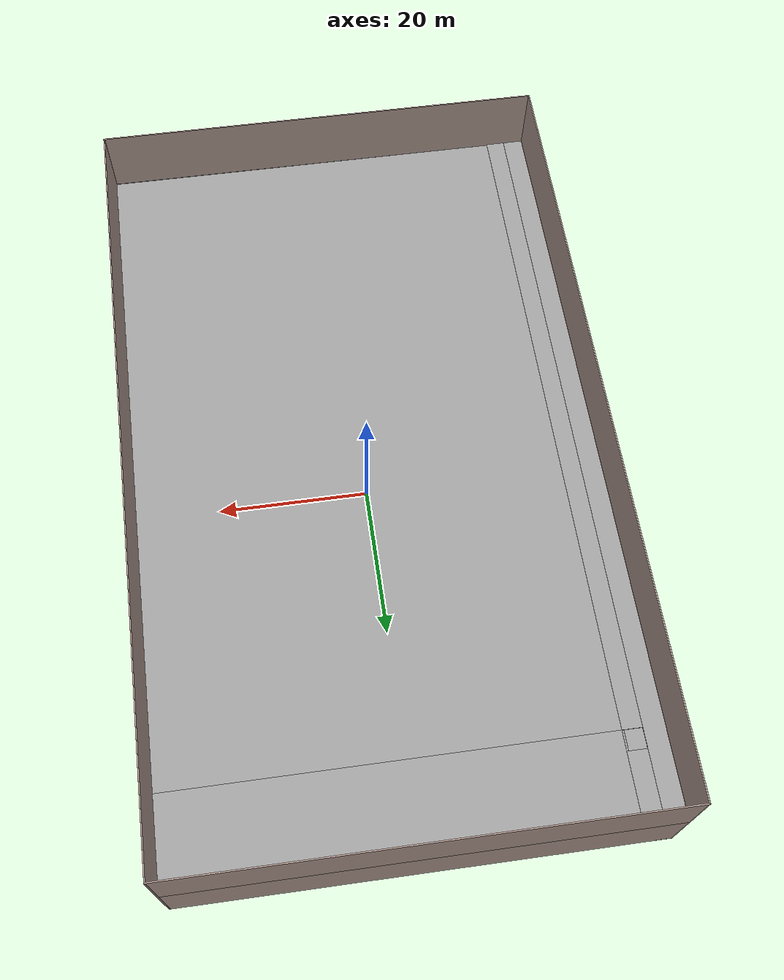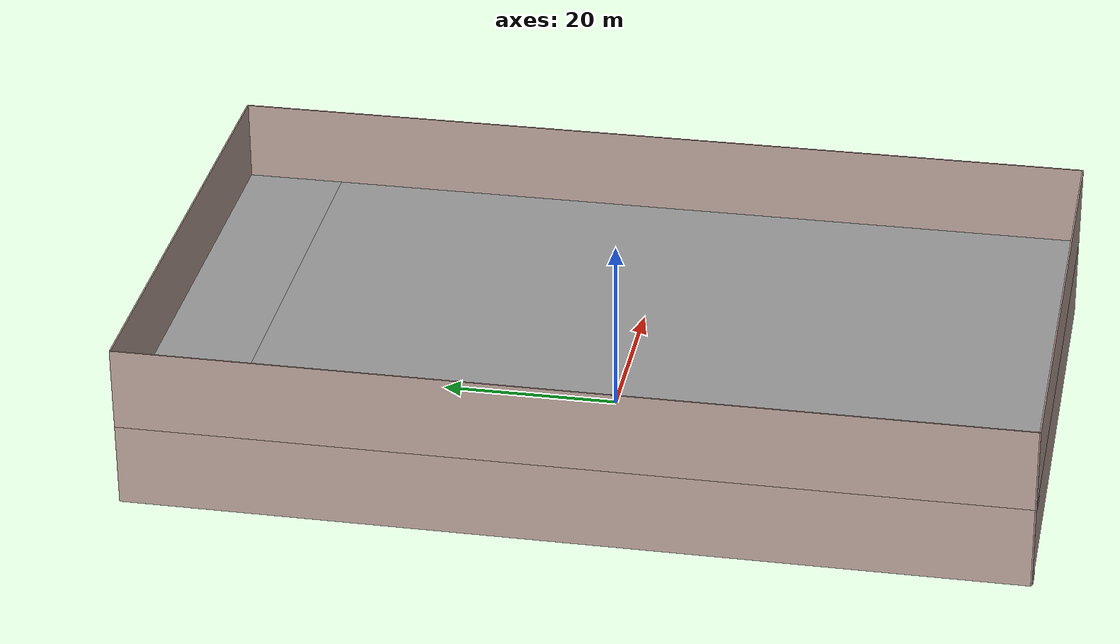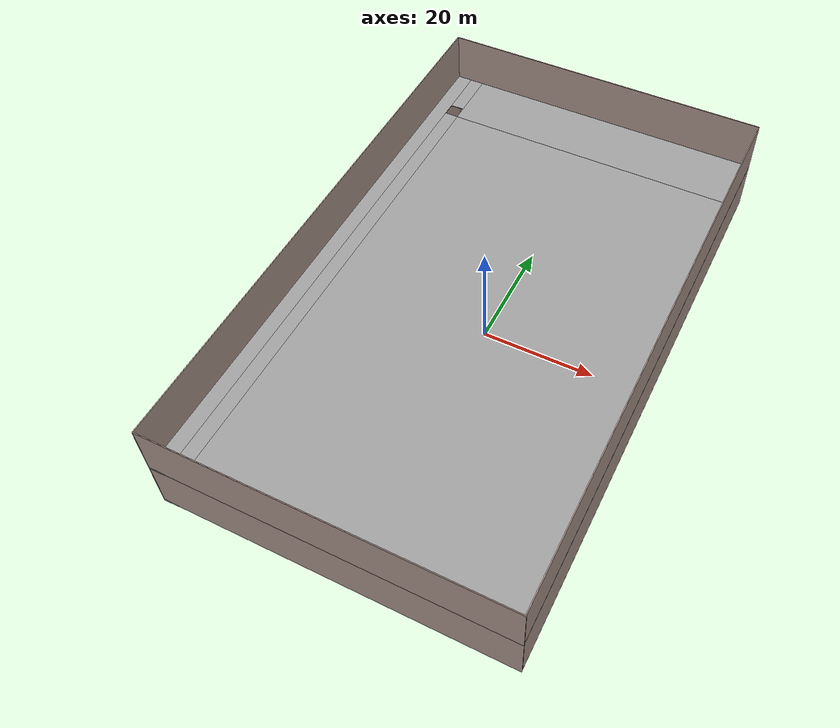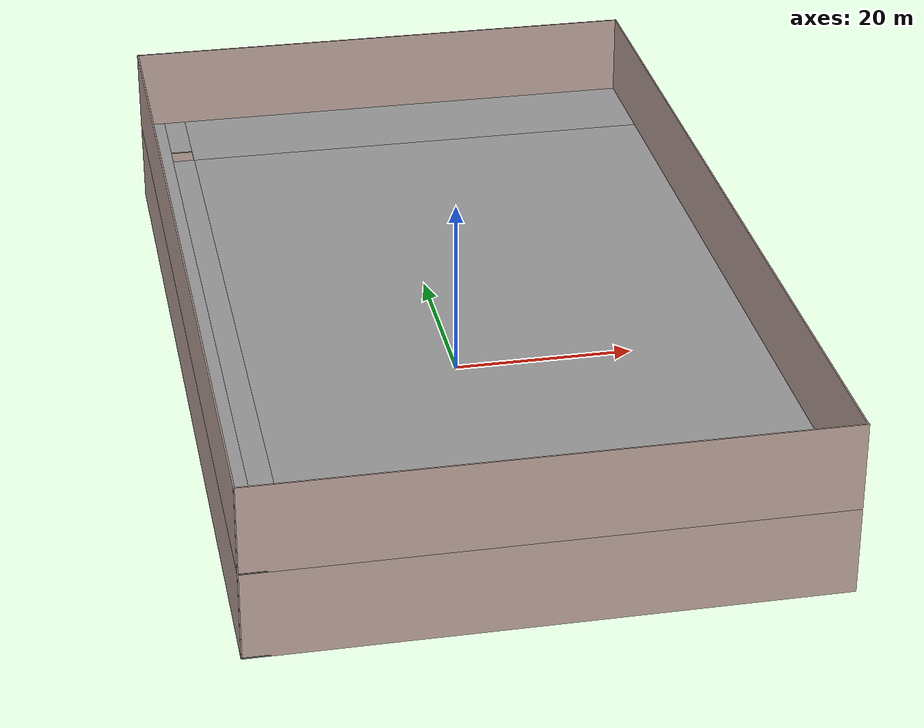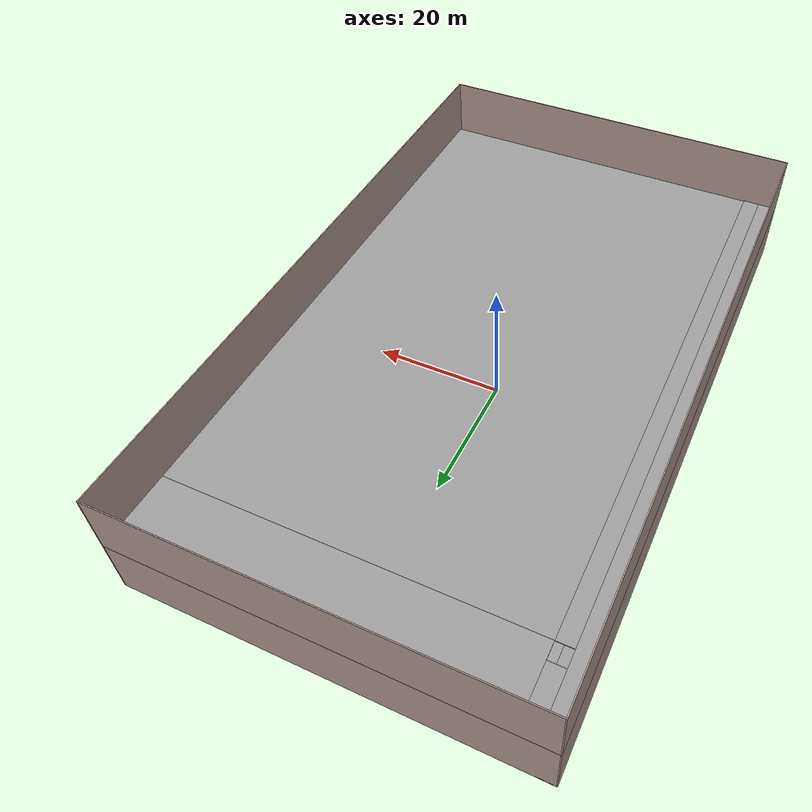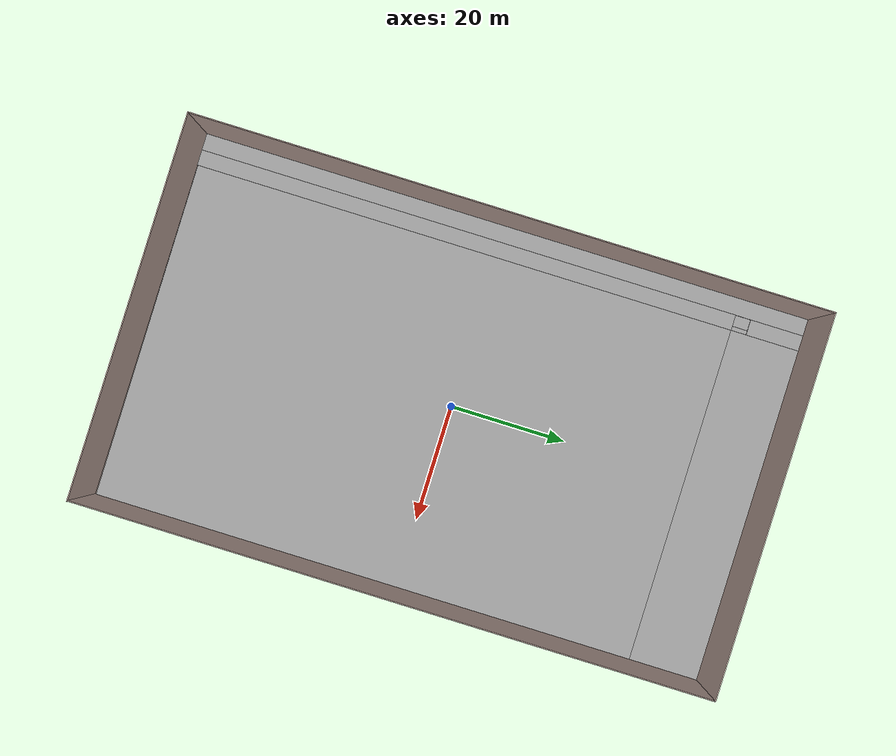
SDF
<sdf version="1.6">
 <world name="default">
  <gravity>0 0 -9.8</gravity>
  <magnetic_field>6e-06 2.3e-05 -4.2e-05</magnetic_field>
  <atmosphere type="adiabatic"/>
  <physics type="ode">
   <max_step_size>0.001</max_step_size>
   <real_time_factor>1</real_time_factor>
   <real_time_update_rate>1000</real_time_update_rate>
  </physics>
  <model name="building1"><include><uri>model://building1</uri></include></model>
  <model name="floor"><include><uri>model://floor</uri></include></model>
  <light name="Light_1" type="point">
   <pose>0 -30 9 0 0 0</pose>
   <diffuse>0.4 0.4 0.4 1</diffuse>
   <specular>0.5 0.5 0.5 1</specular>
   <attenuation>
    <range>80</range>
    <constant>0.3</constant>
    <linear>0.03</linear>
    <quadratic>0</quadratic>
   </attenuation>
   <direction>0.1 0.1 -1</direction>
  </light>
  <light name="Light_1_1" type="point">
   <pose>0 -15 40 0 0 0</pose>
   <diffuse>0.4 0.4 0.4 1</diffuse>
   <specular>0.5 0.5 0.5 1</specular>
   <attenuation>
    <range>80</range>
    <constant>0.3</constant>
    <linear>0.03</linear>
    <quadratic>0</quadratic>
   </attenuation>
   <direction>0.1 0.1 -1</direction>
  </light>
  <light name="Light_3" type="point">
   <pose>0 0 9 0 0 0</pose>
   <diffuse>0.4 0.4 0.4 1</diffuse>
   <specular>0.5 0.5 0.5 1</specular>
   <attenuation>
    <range>80</range>
    <constant>0.3</constant>
    <linear>0.03</linear>
    <quadratic>0</quadratic>
   </attenuation>
   <direction>0.1 0.1 -1</direction>
  </light>
  <light name="Light_3_1" type="point">
   <pose>0 25 40 0 0 0</pose>
   <diffuse>0.4 0.4 0.4 1</diffuse>
   <specular>0.5 0.5 0.5 1</specular>
   <attenuation>
    <range>80</range>
    <constant>0.3</constant>
    <linear>0.03</linear>
    <quadratic>0</quadratic>
   </attenuation>
   <direction>0.1 0.1 -1</direction>
  </light>
  <light name="Light_5" type="point">
   <pose>0 30 9 0 0 0</pose>
   <diffuse>0.4 0.4 0.4 1</diffuse>
   <specular>0.5 0.5 0.5 1</specular>
   <attenuation>
    <range>80</range>
    <constant>0.3</constant>
    <linear>0.03</linear>
    <quadratic>0</quadratic>
   </attenuation>
   <direction>0.1 0.1 -1</direction>
  </light>
 </world>
</sdf>

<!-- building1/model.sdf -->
<sdf version='1.7'>
  <model name='building1'>
    <link name='Floor_4'>
      <pose>1e-06 -3e-06 9.5 0 -0 0</pose>
      <self_collide>0</self_collide>
      <enable_wind>0</enable_wind>
      <kinematic>0</kinematic>
      <gravity>1</gravity>
      <inertial>
        <mass>1</mass>
        <pose>0 0 0 0 -0 0</pose>
        <inertia>
          <ixx>1</ixx>
          <ixy>0</ixy>
          <ixz>0</ixz>
          <iyy>1</iyy>
          <iyz>0</iyz>
          <izz>1</izz>
        </inertia>
      </inertial>
      <visual name='Floor_4_Visual_1'>
        <pose>2.65 -5.4875 0.05 0 -0 0</pose>
        <geometry>
          <box>
            <size>54.8 88.55 0.1</size>
          </box>
        </geometry>
        <material>
          <script>
            <uri>file://media/materials/scripts/gazebo.material</uri>
            <name>Gazebo/Grey</name>
          </script>
          <ambient>1 1 1 1</ambient>
          <shader type='pixel'>
            <normal_map>__default__</normal_map>
          </shader>
          <diffuse>0.7 0.7 0.7 1</diffuse>
          <specular>0.01 0.01 0.01 1</specular>
          <emissive>0 0 0 1</emissive>
        </material>
        <meta>
          <layer>1</layer>
        </meta>
        <transparency>0</transparency>
        <cast_shadows>1</cast_shadows>
      </visual>
      <visual name='Floor_4_Visual_3'>
        <pose>-26.0025 45.7 0.05 0 -0 0</pose>
        <geometry>
          <box>
            <size>2.515 8.8 0.1</size>
          </box>
        </geometry>
        <material>
          <script>
            <uri>file://media/materials/scripts/gazebo.material</uri>
            <name>Gazebo/Grey</name>
          </script>
          <ambient>1 1 1 1</ambient>
          <shader type='pixel'>
            <normal_map>__default__</normal_map>
          </shader>
          <diffuse>0.7 0.7 0.7 1</diffuse>
          <specular>0.01 0.01 0.01 1</specular>
          <emissive>0 0 0 1</emissive>
        </material>
        <meta>
          <layer>1</layer>
        </meta>
        <transparency>0</transparency>
        <cast_shadows>1</cast_shadows>
      </visual>
      <visual name='ModelPreview_8::Floor_4::visual_4'>
        <pose>-26.0025 -5.6 0.05 0 -0 0</pose>
        <geometry>
          <box>
            <size>2.55 88.8 0.1</size>
          </box>
        </geometry>
        <material>
          <script>
            <uri>file://media/materials/scripts/gazebo.material</uri>
            <name>Gazebo/Grey</name>
          </script>
          <ambient>1 1 1 1</ambient>
          <shader type='pixel'>
            <normal_map>__default__</normal_map>
          </shader>
          <diffuse>0.7 0.7 0.7 1</diffuse>
          <specular>0.01 0.01 0.01 1</specular>
          <emissive>0 0 0 1</emissive>
        </material>
        <meta>
          <layer>1</layer>
        </meta>
        <transparency>0</transparency>
        <cast_shadows>1</cast_shadows>
      </visual>
      <visual name='Floor_4_Visual_2'>
        <pose>2.65 44.39 0.05 0 -0 0</pose>
        <geometry>
          <box>
            <size>54.8 11.205 0.1</size>
          </box>
        </geometry>
        <material>
          <script>
            <uri>file://media/materials/scripts/gazebo.material</uri>
            <name>Gazebo/Grey</name>
          </script>
          <ambient>1 1 1 1</ambient>
          <shader type='pixel'>
            <normal_map>__default__</normal_map>
          </shader>
          <diffuse>0.7 0.7 0.7 1</diffuse>
          <specular>0.01 0.01 0.01 1</specular>
          <emissive>0 0 0 1</emissive>
        </material>
        <meta>
          <layer>1</layer>
        </meta>
        <transparency>0</transparency>
        <cast_shadows>1</cast_shadows>
      </visual>
      <visual name='Floor_4_Visual_0'>
        <pose>-28.63 0 0.05 0 -0 0</pose>
        <geometry>
          <box>
            <size>2.75 100.232 0.1</size>
          </box>
        </geometry>
        <material>
          <script>
            <uri>file://media/materials/scripts/gazebo.material</uri>
            <name>Gazebo/Grey</name>
          </script>
          <ambient>1 1 1 1</ambient>
          <shader type='pixel'>
            <normal_map>__default__</normal_map>
          </shader>
          <diffuse>0.7 0.7 0.7 1</diffuse>
          <specular>0.01 0.01 0.01 1</specular>
          <emissive>0 0 0 1</emissive>
        </material>
        <meta>
          <layer>1</layer>
        </meta>
        <transparency>0</transparency>
        <cast_shadows>1</cast_shadows>
      </visual>
      <collision name='Floor_4_Collision_1'>
        <laser_retro>0</laser_retro>
        <max_contacts>10</max_contacts>
        <pose>1.345 -5.4875 0.05 0 -0 0</pose>
        <geometry>
          <box>
            <size>57.2 88.55 0.1</size>
          </box>
        </geometry>
        <surface>
          <friction>
            <ode>
              <mu>1</mu>
              <mu2>1</mu2>
              <fdir1>0 0 0</fdir1>
              <slip1>0</slip1>
              <slip2>0</slip2>
            </ode>
            <torsional>
              <coefficient>1</coefficient>
              <patch_radius>0</patch_radius>
              <surface_radius>0</surface_radius>
              <use_patch_radius>1</use_patch_radius>
              <ode>
                <slip>0</slip>
              </ode>
            </torsional>
          </friction>
          <bounce>
            <restitution_coefficient>0</restitution_coefficient>
            <threshold>1e+06</threshold>
          </bounce>
          <contact>
            <collide_without_contact>0</collide_without_contact>
            <collide_without_contact_bitmask>1</collide_without_contact_bitmask>
            <collide_bitmask>1</collide_bitmask>
            <ode>
              <soft_cfm>0</soft_cfm>
              <soft_erp>0.2</soft_erp>
              <kp>1e+13</kp>
              <kd>1</kd>
              <max_vel>0.01</max_vel>
              <min_depth>0</min_depth>
            </ode>
            <bullet>
              <split_impulse>1</split_impulse>
              <split_impulse_penetration_threshold>-0.01</split_impulse_penetration_threshold>
              <soft_cfm>0</soft_cfm>
              <soft_erp>0.2</soft_erp>
              <kp>1e+13</kp>
              <kd>1</kd>
            </bullet>
          </contact>
        </surface>
      </collision>
      <collision name='Floor_4_Collision_2'>
        <laser_retro>0</laser_retro>
        <max_contacts>10</max_contacts>
        <pose>2.65 44.39 0.05 0 -0 0</pose>
        <geometry>
          <box>
            <size>54.8 11.205 0.1</size>
          </box>
        </geometry>
        <surface>
          <friction>
            <ode>
              <mu>1</mu>
              <mu2>1</mu2>
              <fdir1>0 0 0</fdir1>
              <slip1>0</slip1>
              <slip2>0</slip2>
            </ode>
            <torsional>
              <coefficient>1</coefficient>
              <patch_radius>0</patch_radius>
              <surface_radius>0</surface_radius>
              <use_patch_radius>1</use_patch_radius>
              <ode>
                <slip>0</slip>
              </ode>
            </torsional>
          </friction>
          <bounce>
            <restitution_coefficient>0</restitution_coefficient>
            <threshold>1e+06</threshold>
          </bounce>
          <contact>
            <collide_without_contact>0</collide_without_contact>
            <collide_without_contact_bitmask>1</collide_without_contact_bitmask>
            <collide_bitmask>1</collide_bitmask>
            <ode>
              <soft_cfm>0</soft_cfm>
              <soft_erp>0.2</soft_erp>
              <kp>1e+13</kp>
              <kd>1</kd>
              <max_vel>0.01</max_vel>
              <min_depth>0</min_depth>
            </ode>
            <bullet>
              <split_impulse>1</split_impulse>
              <split_impulse_penetration_threshold>-0.01</split_impulse_penetration_threshold>
              <soft_cfm>0</soft_cfm>
              <soft_erp>0.2</soft_erp>
              <kp>1e+13</kp>
              <kd>1</kd>
            </bullet>
          </contact>
        </surface>
      </collision>
      <collision name='Floor_4_Collision_3'>
        <laser_retro>0</laser_retro>
        <max_contacts>10</max_contacts>
        <pose>-26.0025 45.7 0.05 0 -0 0</pose>
        <geometry>
          <box>
            <size>2.515 8.8 0.1</size>
          </box>
        </geometry>
        <surface>
          <friction>
            <ode>
              <mu>1</mu>
              <mu2>1</mu2>
              <fdir1>0 0 0</fdir1>
              <slip1>0</slip1>
              <slip2>0</slip2>
            </ode>
            <torsional>
              <coefficient>1</coefficient>
              <patch_radius>0</patch_radius>
              <surface_radius>0</surface_radius>
              <use_patch_radius>1</use_patch_radius>
              <ode>
                <slip>0</slip>
              </ode>
            </torsional>
          </friction>
          <bounce>
            <restitution_coefficient>0</restitution_coefficient>
            <threshold>1e+06</threshold>
          </bounce>
          <contact>
            <collide_without_contact>0</collide_without_contact>
            <collide_without_contact_bitmask>1</collide_without_contact_bitmask>
            <collide_bitmask>1</collide_bitmask>
            <ode>
              <soft_cfm>0</soft_cfm>
              <soft_erp>0.2</soft_erp>
              <kp>1e+13</kp>
              <kd>1</kd>
              <max_vel>0.01</max_vel>
              <min_depth>0</min_depth>
            </ode>
            <bullet>
              <split_impulse>1</split_impulse>
              <split_impulse_penetration_threshold>-0.01</split_impulse_penetration_threshold>
              <soft_cfm>0</soft_cfm>
              <soft_erp>0.2</soft_erp>
              <kp>1e+13</kp>
              <kd>1</kd>
            </bullet>
          </contact>
        </surface>
      </collision>
      <collision name='Floor_4_Collision_0'>
        <laser_retro>0</laser_retro>
        <max_contacts>10</max_contacts>
        <pose>-28.63 0 0.05 0 -0 0</pose>
        <geometry>
          <box>
            <size>2.74 100.232 0.1</size>
          </box>
        </geometry>
        <surface>
          <friction>
            <ode>
              <mu>1</mu>
              <mu2>1</mu2>
              <fdir1>0 0 0</fdir1>
              <slip1>0</slip1>
              <slip2>0</slip2>
            </ode>
            <torsional>
              <coefficient>1</coefficient>
              <patch_radius>0</patch_radius>
              <surface_radius>0</surface_radius>
              <use_patch_radius>1</use_patch_radius>
              <ode>
                <slip>0</slip>
              </ode>
            </torsional>
          </friction>
          <bounce>
            <restitution_coefficient>0</restitution_coefficient>
            <threshold>1e+06</threshold>
          </bounce>
          <contact>
            <collide_without_contact>0</collide_without_contact>
            <collide_without_contact_bitmask>1</collide_without_contact_bitmask>
            <collide_bitmask>1</collide_bitmask>
            <ode>
              <soft_cfm>0</soft_cfm>
              <soft_erp>0.2</soft_erp>
              <kp>1e+13</kp>
              <kd>1</kd>
              <max_vel>0.01</max_vel>
              <min_depth>0</min_depth>
            </ode>
            <bullet>
              <split_impulse>1</split_impulse>
              <split_impulse_penetration_threshold>-0.01</split_impulse_penetration_threshold>
              <soft_cfm>0</soft_cfm>
              <soft_erp>0.2</soft_erp>
              <kp>1e+13</kp>
              <kd>1</kd>
            </bullet>
          </contact>
        </surface>
      </collision>
    </link>

    <link name='Wall_25'>
      <pose>-30.0274 0.041012 0 0 -0 1.5708</pose>
      <self_collide>0</self_collide>
      <enable_wind>0</enable_wind>
      <kinematic>0</kinematic>
      <visual name='Wall_25_Visual'>
        <pose>0 0 4.7 0 -0 0</pose>
        <geometry>
          <box>
            <size>100.15 0.15 9.5</size>
          </box>
        </geometry>
        <material>
          <script>
            <uri>file://media/materials/scripts/gazebo.material</uri>
            <name>Gazebo/Grey</name>
          </script>
          <ambient>0.760784 0.662745 0.627451 1</ambient>
          <shader type='pixel'/>
        </material>
        <meta>
          <layer>0</layer>
        </meta>
        <transparency>0</transparency>
        <cast_shadows>1</cast_shadows>
      </visual>
      <collision name='Wall_25_Collision'>
        <laser_retro>0</laser_retro>
        <max_contacts>10</max_contacts>
        <pose>0 0 4.7 0 -0 0</pose>
        <geometry>
          <box>
            <size>100.15 0.15 9.5</size>
          </box>
        </geometry>
        <surface>
          <friction>
            <ode>
              <mu>1</mu>
              <mu2>1</mu2>
              <fdir1>0 0 0</fdir1>
              <slip1>0</slip1>
              <slip2>0</slip2>
            </ode>
            <torsional>
              <coefficient>1</coefficient>
              <patch_radius>0</patch_radius>
              <surface_radius>0</surface_radius>
              <use_patch_radius>1</use_patch_radius>
              <ode>
                <slip>0</slip>
              </ode>
            </torsional>
          </friction>
          <bounce>
            <restitution_coefficient>0</restitution_coefficient>
            <threshold>1e+06</threshold>
          </bounce>
          <contact>
            <collide_without_contact>0</collide_without_contact>
            <collide_without_contact_bitmask>1</collide_without_contact_bitmask>
            <collide_bitmask>1</collide_bitmask>
            <ode>
              <soft_cfm>0</soft_cfm>
              <soft_erp>0.2</soft_erp>
              <kp>1e+13</kp>
              <kd>1</kd>
              <max_vel>0.01</max_vel>
              <min_depth>0</min_depth>
            </ode>
            <bullet>
              <split_impulse>1</split_impulse>
              <split_impulse_penetration_threshold>-0.01</split_impulse_penetration_threshold>
              <soft_cfm>0</soft_cfm>
              <soft_erp>0.2</soft_erp>
              <kp>1e+13</kp>
              <kd>1</kd>
            </bullet>
          </contact>
        </surface>
      </collision>
    </link>

    <link name='Wall_26'>
      <pose>-0.027363 50.041 0 0 -0 0</pose>
      <self_collide>0</self_collide>
      <enable_wind>0</enable_wind>
      <kinematic>0</kinematic>
      <visual name='Wall_26_Visual'>
        <pose>0 0 4.7 0 -0 0</pose>
        <geometry>
          <box>
            <size>60.15 0.15 9.5</size>
          </box>
        </geometry>
        <material>
          <script>
            <uri>file://media/materials/scripts/gazebo.material</uri>
            <name>Gazebo/Grey</name>
          </script>
          <ambient>0.760784 0.662745 0.627451 1</ambient>
          <shader type='pixel'/>
        </material>
        <meta>
          <layer>0</layer>
        </meta>
        <transparency>0</transparency>
        <cast_shadows>1</cast_shadows>
      </visual>
      <collision name='Wall_26_Collision'>
        <laser_retro>0</laser_retro>
        <max_contacts>10</max_contacts>
        <pose>0 0 4.7 0 -0 0</pose>
        <geometry>
          <box>
            <size>60.15 0.15 9.5</size>
          </box>
        </geometry>
        <surface>
          <friction>
            <ode>
              <mu>1</mu>
              <mu2>1</mu2>
              <fdir1>0 0 0</fdir1>
              <slip1>0</slip1>
              <slip2>0</slip2>
            </ode>
            <torsional>
              <coefficient>1</coefficient>
              <patch_radius>0</patch_radius>
              <surface_radius>0</surface_radius>
              <use_patch_radius>1</use_patch_radius>
              <ode>
                <slip>0</slip>
              </ode>
            </torsional>
          </friction>
          <bounce>
            <restitution_coefficient>0</restitution_coefficient>
            <threshold>1e+06</threshold>
          </bounce>
          <contact>
            <collide_without_contact>0</collide_without_contact>
            <collide_without_contact_bitmask>1</collide_without_contact_bitmask>
            <collide_bitmask>1</collide_bitmask>
            <ode>
              <soft_cfm>0</soft_cfm>
              <soft_erp>0.2</soft_erp>
              <kp>1e+13</kp>
              <kd>1</kd>
              <max_vel>0.01</max_vel>
              <min_depth>0</min_depth>
            </ode>
            <bullet>
              <split_impulse>1</split_impulse>
              <split_impulse_penetration_threshold>-0.01</split_impulse_penetration_threshold>
              <soft_cfm>0</soft_cfm>
              <soft_erp>0.2</soft_erp>
              <kp>1e+13</kp>
              <kd>1</kd>
            </bullet>
          </contact>
        </surface>
      </collision>
    </link>

    <link name='Wall_27'>
      <pose>29.9726 0.041012 0 0 0 -1.5708</pose>
      <self_collide>0</self_collide>
      <enable_wind>0</enable_wind>
      <kinematic>0</kinematic>
      <visual name='Wall_27_Visual'>
        <pose>0 0 4.7 0 -0 0</pose>
        <geometry>
          <box>
            <size>100.15 0.15 9.5</size>
          </box>
        </geometry>
        <material>
          <script>
            <uri>file://media/materials/scripts/gazebo.material</uri>
            <name>Gazebo/Grey</name>
          </script>
          <ambient>0.760784 0.662745 0.627451 1</ambient>
          <shader type='pixel'/>
        </material>
        <meta>
          <layer>0</layer>
        </meta>
        <transparency>0</transparency>
        <cast_shadows>1</cast_shadows>
      </visual>
      <collision name='Wall_27_Collision'>
        <laser_retro>0</laser_retro>
        <max_contacts>10</max_contacts>
        <pose>0 0 4.7 0 -0 0</pose>
        <geometry>
          <box>
            <size>100.15 0.15 9.5</size>
          </box>
        </geometry>
        <surface>
          <friction>
            <ode>
              <mu>1</mu>
              <mu2>1</mu2>
              <fdir1>0 0 0</fdir1>
              <slip1>0</slip1>
              <slip2>0</slip2>
            </ode>
            <torsional>
              <coefficient>1</coefficient>
              <patch_radius>0</patch_radius>
              <surface_radius>0</surface_radius>
              <use_patch_radius>1</use_patch_radius>
              <ode>
                <slip>0</slip>
              </ode>
            </torsional>
          </friction>
          <bounce>
            <restitution_coefficient>0</restitution_coefficient>
            <threshold>1e+06</threshold>
          </bounce>
          <contact>
            <collide_without_contact>0</collide_without_contact>
            <collide_without_contact_bitmask>1</collide_without_contact_bitmask>
            <collide_bitmask>1</collide_bitmask>
            <ode>
              <soft_cfm>0</soft_cfm>
              <soft_erp>0.2</soft_erp>
              <kp>1e+13</kp>
              <kd>1</kd>
              <max_vel>0.01</max_vel>
              <min_depth>0</min_depth>
            </ode>
            <bullet>
              <split_impulse>1</split_impulse>
              <split_impulse_penetration_threshold>-0.01</split_impulse_penetration_threshold>
              <soft_cfm>0</soft_cfm>
              <soft_erp>0.2</soft_erp>
              <kp>1e+13</kp>
              <kd>1</kd>
            </bullet>
          </contact>
        </surface>
      </collision>
    </link>

    <link name='Wall_34'>
      <pose>1e-06 -49.9999 0 0 0 -0.001364</pose>
      <self_collide>0</self_collide>
      <enable_wind>0</enable_wind>
      <kinematic>0</kinematic>
      <visual name='Wall_34_Visual'>
        <pose>0 0 4.7 0 -0 0</pose>
        <geometry>
          <box>
            <size>60.2048 0.15 9.5</size>
          </box>
        </geometry>
        <material>
          <script>
            <uri>file://media/materials/scripts/gazebo.material</uri>
            <name>Gazebo/Grey</name>
          </script>
          <ambient>0.760784 0.662745 0.627451 1</ambient>
          <shader type='pixel'/>
        </material>
        <meta>
          <layer>0</layer>
        </meta>
        <transparency>0</transparency>
        <cast_shadows>1</cast_shadows>
      </visual>
      <collision name='Wall_34_Collision'>
        <laser_retro>0</laser_retro>
        <max_contacts>10</max_contacts>
        <pose>0 0 4.7 0 -0 0</pose>
        <geometry>
          <box>
            <size>60.2048 0.15 9.5</size>
          </box>
        </geometry>
        <surface>
          <friction>
            <ode>
              <mu>1</mu>
              <mu2>1</mu2>
              <fdir1>0 0 0</fdir1>
              <slip1>0</slip1>
              <slip2>0</slip2>
            </ode>
            <torsional>
              <coefficient>1</coefficient>
              <patch_radius>0</patch_radius>
              <surface_radius>0</surface_radius>
              <use_patch_radius>1</use_patch_radius>
              <ode>
                <slip>0</slip>
              </ode>
            </torsional>
          </friction>
          <bounce>
            <restitution_coefficient>0</restitution_coefficient>
            <threshold>1e+06</threshold>
          </bounce>
          <contact>
            <collide_without_contact>0</collide_without_contact>
            <collide_without_contact_bitmask>1</collide_without_contact_bitmask>
            <collide_bitmask>1</collide_bitmask>
            <ode>
              <soft_cfm>0</soft_cfm>
              <soft_erp>0.2</soft_erp>
              <kp>1e+13</kp>
              <kd>1</kd>
              <max_vel>0.01</max_vel>
              <min_depth>0</min_depth>
            </ode>
            <bullet>
              <split_impulse>1</split_impulse>
              <split_impulse_penetration_threshold>-0.01</split_impulse_penetration_threshold>
              <soft_cfm>0</soft_cfm>
              <soft_erp>0.2</soft_erp>
              <kp>1e+13</kp>
              <kd>1</kd>
            </bullet>
          </contact>
        </surface>
      </collision>
    </link>

    <link name='Wall_44'>
      <pose>-30.0274 0.041012 9.5 0 -0 1.5708</pose>
      <self_collide>0</self_collide>
      <enable_wind>0</enable_wind>
      <kinematic>0</kinematic>
      <visual name='Wall_44_Visual'>
        <pose>0 0 4.7 0 -0 0</pose>
        <geometry>
          <box>
            <size>100.15 0.15 9.5</size>
          </box>
        </geometry>
        <material>
          <script>
            <uri>file://media/materials/scripts/gazebo.material</uri>
            <name>Gazebo/Grey</name>
          </script>
          <ambient>0.760784 0.662745 0.627451 1</ambient>
          <shader type='pixel'/>
        </material>
        <meta>
          <layer>1</layer>
        </meta>
        <transparency>0</transparency>
        <cast_shadows>1</cast_shadows>
      </visual>
      <collision name='Wall_44_Collision'>
        <laser_retro>0</laser_retro>
        <max_contacts>10</max_contacts>
        <pose>0 0 4.7 0 -0 0</pose>
        <geometry>
          <box>
            <size>100.15 0.15 9.5</size>
          </box>
        </geometry>
        <surface>
          <friction>
            <ode>
              <mu>1</mu>
              <mu2>1</mu2>
              <fdir1>0 0 0</fdir1>
              <slip1>0</slip1>
              <slip2>0</slip2>
            </ode>
            <torsional>
              <coefficient>1</coefficient>
              <patch_radius>0</patch_radius>
              <surface_radius>0</surface_radius>
              <use_patch_radius>1</use_patch_radius>
              <ode>
                <slip>0</slip>
              </ode>
            </torsional>
          </friction>
          <bounce>
            <restitution_coefficient>0</restitution_coefficient>
            <threshold>1e+06</threshold>
          </bounce>
          <contact>
            <collide_without_contact>0</collide_without_contact>
            <collide_without_contact_bitmask>1</collide_without_contact_bitmask>
            <collide_bitmask>1</collide_bitmask>
            <ode>
              <soft_cfm>0</soft_cfm>
              <soft_erp>0.2</soft_erp>
              <kp>1e+13</kp>
              <kd>1</kd>
              <max_vel>0.01</max_vel>
              <min_depth>0</min_depth>
            </ode>
            <bullet>
              <split_impulse>1</split_impulse>
              <split_impulse_penetration_threshold>-0.01</split_impulse_penetration_threshold>
              <soft_cfm>0</soft_cfm>
              <soft_erp>0.2</soft_erp>
              <kp>1e+13</kp>
              <kd>1</kd>
            </bullet>
          </contact>
        </surface>
      </collision>
    </link>
    <link name='Wall_45'>
      <pose>-0.027363 50.041 9.5 0 -0 0</pose>
      <self_collide>0</self_collide>
      <enable_wind>0</enable_wind>
      <kinematic>0</kinematic>
      <visual name='Wall_45_Visual'>
        <pose>0 0 4.7 0 -0 0</pose>
        <geometry>
          <box>
            <size>60.15 0.15 9.5</size>
          </box>
        </geometry>
        <material>
          <script>
            <uri>file://media/materials/scripts/gazebo.material</uri>
            <name>Gazebo/Grey</name>
          </script>
          <ambient>0.760784 0.662745 0.627451 1</ambient>
          <shader type='pixel'/>
        </material>
        <meta>
          <layer>1</layer>
        </meta>
        <transparency>0</transparency>
        <cast_shadows>1</cast_shadows>
      </visual>
      <collision name='Wall_45_Collision'>
        <laser_retro>0</laser_retro>
        <max_contacts>10</max_contacts>
        <pose>0 0 4.7 0 -0 0</pose>
        <geometry>
          <box>
            <size>60.15 0.15 9.5</size>
          </box>
        </geometry>
        <surface>
          <friction>
            <ode>
              <mu>1</mu>
              <mu2>1</mu2>
              <fdir1>0 0 0</fdir1>
              <slip1>0</slip1>
              <slip2>0</slip2>
            </ode>
            <torsional>
              <coefficient>1</coefficient>
              <patch_radius>0</patch_radius>
              <surface_radius>0</surface_radius>
              <use_patch_radius>1</use_patch_radius>
              <ode>
                <slip>0</slip>
              </ode>
            </torsional>
          </friction>
          <bounce>
            <restitution_coefficient>0</restitution_coefficient>
            <threshold>1e+06</threshold>
          </bounce>
          <contact>
            <collide_without_contact>0</collide_without_contact>
            <collide_without_contact_bitmask>1</collide_without_contact_bitmask>
            <collide_bitmask>1</collide_bitmask>
            <ode>
              <soft_cfm>0</soft_cfm>
              <soft_erp>0.2</soft_erp>
              <kp>1e+13</kp>
              <kd>1</kd>
              <max_vel>0.01</max_vel>
              <min_depth>0</min_depth>
            </ode>
            <bullet>
              <split_impulse>1</split_impulse>
              <split_impulse_penetration_threshold>-0.01</split_impulse_penetration_threshold>
              <soft_cfm>0</soft_cfm>
              <soft_erp>0.2</soft_erp>
              <kp>1e+13</kp>
              <kd>1</kd>
            </bullet>
          </contact>
        </surface>
      </collision>
    </link>
    <link name='Wall_46'>
      <pose>29.9726 0.041012 9.5 0 0 -1.5708</pose>
      <self_collide>0</self_collide>
      <enable_wind>0</enable_wind>
      <kinematic>0</kinematic>
      <visual name='Wall_46_Visual'>
        <pose>0 0 4.7 0 -0 0</pose>
        <geometry>
          <box>
            <size>100.15 0.15 9.5</size>
          </box>
        </geometry>
        <material>
          <script>
            <uri>file://media/materials/scripts/gazebo.material</uri>
            <name>Gazebo/Grey</name>
          </script>
          <ambient>0.760784 0.662745 0.627451 1</ambient>
          <shader type='pixel'/>
        </material>
        <meta>
          <layer>1</layer>
        </meta>
        <transparency>0</transparency>
        <cast_shadows>1</cast_shadows>
      </visual>
      <collision name='Wall_46_Collision'>
        <laser_retro>0</laser_retro>
        <max_contacts>10</max_contacts>
        <pose>0 0 4.7 0 -0 0</pose>
        <geometry>
          <box>
            <size>100.15 0.15 9.5</size>
          </box>
        </geometry>
        <surface>
          <friction>
            <ode>
              <mu>1</mu>
              <mu2>1</mu2>
              <fdir1>0 0 0</fdir1>
              <slip1>0</slip1>
              <slip2>0</slip2>
            </ode>
            <torsional>
              <coefficient>1</coefficient>
              <patch_radius>0</patch_radius>
              <surface_radius>0</surface_radius>
              <use_patch_radius>1</use_patch_radius>
              <ode>
                <slip>0</slip>
              </ode>
            </torsional>
          </friction>
          <bounce>
            <restitution_coefficient>0</restitution_coefficient>
            <threshold>1e+06</threshold>
          </bounce>
          <contact>
            <collide_without_contact>0</collide_without_contact>
            <collide_without_contact_bitmask>1</collide_without_contact_bitmask>
            <collide_bitmask>1</collide_bitmask>
            <ode>
              <soft_cfm>0</soft_cfm>
              <soft_erp>0.2</soft_erp>
              <kp>1e+13</kp>
              <kd>1</kd>
              <max_vel>0.01</max_vel>
              <min_depth>0</min_depth>
            </ode>
            <bullet>
              <split_impulse>1</split_impulse>
              <split_impulse_penetration_threshold>-0.01</split_impulse_penetration_threshold>
              <soft_cfm>0</soft_cfm>
              <soft_erp>0.2</soft_erp>
              <kp>1e+13</kp>
              <kd>1</kd>
            </bullet>
          </contact>
        </surface>
      </collision>
    </link>
    <link name='Wall_47'>
      <pose>1e-06 -49.9999 9.5 0 0 -0.001364</pose>
      <self_collide>0</self_collide>
      <enable_wind>0</enable_wind>
      <kinematic>0</kinematic>
      <visual name='Wall_47_Visual'>
        <pose>0 0 4.7 0 -0 0</pose>
        <geometry>
          <box>
            <size>60.2048 0.15 9.5</size>
          </box>
        </geometry>
        <material>
          <script>
            <uri>file://media/materials/scripts/gazebo.material</uri>
            <name>Gazebo/Grey</name>
          </script>
          <ambient>0.760784 0.662745 0.627451 1</ambient>
          <shader type='pixel'/>
        </material>
        <meta>
          <layer>1</layer>
        </meta>
        <transparency>0</transparency>
        <cast_shadows>1</cast_shadows>
      </visual>
      <collision name='Wall_47_Collision'>
        <laser_retro>0</laser_retro>
        <max_contacts>10</max_contacts>
        <pose>0 0 4.7 0 -0 0</pose>
        <geometry>
          <box>
            <size>60.2048 0.15 9.5</size>
          </box>
        </geometry>
        <surface>
          <friction>
            <ode>
              <mu>1</mu>
              <mu2>1</mu2>
              <fdir1>0 0 0</fdir1>
              <slip1>0</slip1>
              <slip2>0</slip2>
            </ode>
            <torsional>
              <coefficient>1</coefficient>
              <patch_radius>0</patch_radius>
              <surface_radius>0</surface_radius>
              <use_patch_radius>1</use_patch_radius>
              <ode>
                <slip>0</slip>
              </ode>
            </torsional>
          </friction>
          <bounce>
            <restitution_coefficient>0</restitution_coefficient>
            <threshold>1e+06</threshold>
          </bounce>
          <contact>
            <collide_without_contact>0</collide_without_contact>
            <collide_without_contact_bitmask>1</collide_without_contact_bitmask>
            <collide_bitmask>1</collide_bitmask>
            <ode>
              <soft_cfm>0</soft_cfm>
              <soft_erp>0.2</soft_erp>
              <kp>1e+13</kp>
              <kd>1</kd>
              <max_vel>0.01</max_vel>
              <min_depth>0</min_depth>
            </ode>
            <bullet>
              <split_impulse>1</split_impulse>
              <split_impulse_penetration_threshold>-0.01</split_impulse_penetration_threshold>
              <soft_cfm>0</soft_cfm>
              <soft_erp>0.2</soft_erp>
              <kp>1e+13</kp>
              <kd>1</kd>
            </bullet>
          </contact>
        </surface>
      </collision>
    </link>
    <static>1</static>
    <allow_auto_disable>1</allow_auto_disable>
  </model>
</sdf>

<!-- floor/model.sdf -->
<sdf version='1.7'>
  <model name='floor'>
    <link name='Floor_4'>
      <pose>1e-06 -3e-06 0.015 0 -0 0</pose>
      <self_collide>0</self_collide>
      <enable_wind>0</enable_wind>
      <kinematic>0</kinematic>
      <gravity>1</gravity>
      <inertial>
        <mass>1</mass>
        <pose>0 0 0 0 -0 0</pose>
        <inertia>
          <ixx>1</ixx>
          <ixy>0</ixy>
          <ixz>0</ixz>
          <iyy>1</iyy>
          <iyz>0</iyz>
          <izz>1</izz>
        </inertia>
      </inertial>
      <visual name='Floor_4_Visual_1'>
        <pose>2.65 -5.4875 0.05 0 -0 0</pose>
        <geometry>
          <box>
            <size>54.8 88.55 0.1</size>
          </box>
        </geometry>
        <material>
          <script>
            <uri>file://media/materials/scripts/gazebo.material</uri>
            <name>Gazebo/Grey</name>
          </script>
          <ambient>1 1 1 1</ambient>
          <shader type='pixel'>
            <normal_map>__default__</normal_map>
          </shader>
          <diffuse>0.7 0.7 0.7 1</diffuse>
          <specular>0.01 0.01 0.01 1</specular>
          <emissive>0 0 0 1</emissive>
        </material>
        <meta>
          <layer>0</layer>
        </meta>
        <transparency>0</transparency>
        <cast_shadows>1</cast_shadows>
      </visual>
      <visual name='Floor_4_Visual_3'>
        <pose>-26.0025 45.7 0.05 0 -0 0</pose>
        <geometry>
          <box>
            <size>2.515 8.8 0.1</size>
          </box>
        </geometry>
        <material>
          <script>
            <uri>file://media/materials/scripts/gazebo.material</uri>
            <name>Gazebo/Grey</name>
          </script>
          <ambient>1 1 1 1</ambient>
          <shader type='pixel'>
            <normal_map>__default__</normal_map>
          </shader>
          <diffuse>0.7 0.7 0.7 1</diffuse>
          <specular>0.01 0.01 0.01 1</specular>
          <emissive>0 0 0 1</emissive>
        </material>
        <meta>
          <layer>0</layer>
        </meta>
        <transparency>0</transparency>
        <cast_shadows>1</cast_shadows>
      </visual>
      <visual name='ModelPreview_8::Floor_4::visual_4'>
        <pose>-26.0025 -5.6 0.05 0 -0 0</pose>
        <geometry>
          <box>
            <size>2.55 88.8 0.1</size>
          </box>
        </geometry>
        <material>
          <script>
            <uri>file://media/materials/scripts/gazebo.material</uri>
            <name>Gazebo/Grey</name>
          </script>
          <ambient>1 1 1 1</ambient>
          <shader type='pixel'>
            <normal_map>__default__</normal_map>
          </shader>
          <diffuse>0.7 0.7 0.7 1</diffuse>
          <specular>0.01 0.01 0.01 1</specular>
          <emissive>0 0 0 1</emissive>
        </material>
        <meta>
          <layer>0</layer>
        </meta>
        <transparency>0</transparency>
        <cast_shadows>1</cast_shadows>
      </visual>
      <visual name='Floor_4_Visual_2'>
        <pose>2.65 44.39 0.05 0 -0 0</pose>
        <geometry>
          <box>
            <size>54.8 11.205 0.1</size>
          </box>
        </geometry>
        <material>
          <script>
            <uri>file://media/materials/scripts/gazebo.material</uri>
            <name>Gazebo/Grey</name>
          </script>
          <ambient>1 1 1 1</ambient>
          <shader type='pixel'>
            <normal_map>__default__</normal_map>
          </shader>
          <diffuse>0.7 0.7 0.7 1</diffuse>
          <specular>0.01 0.01 0.01 1</specular>
          <emissive>0 0 0 1</emissive>
        </material>
        <meta>
          <layer>0</layer>
        </meta>
        <transparency>0</transparency>
        <cast_shadows>1</cast_shadows>
      </visual>
      <visual name='Floor_4_Visual_0'>
        <pose>-28.63 0 0.05 0 -0 0</pose>
        <geometry>
          <box>
            <size>2.75 100.232 0.1</size>
          </box>
        </geometry>
        <material>
          <script>
            <uri>file://media/materials/scripts/gazebo.material</uri>
            <name>Gazebo/Grey</name>
          </script>
          <ambient>1 1 1 1</ambient>
          <shader type='pixel'>
            <normal_map>__default__</normal_map>
          </shader>
          <diffuse>0.7 0.7 0.7 1</diffuse>
          <specular>0.01 0.01 0.01 1</specular>
          <emissive>0 0 0 1</emissive>
        </material>
        <meta>
          <layer>0</layer>
        </meta>
        <transparency>0</transparency>
        <cast_shadows>1</cast_shadows>
      </visual>
      <collision name='Floor_4_Collision_1'>
        <laser_retro>0</laser_retro>
        <max_contacts>10</max_contacts>
        <pose>1.345 -5.4875 0.05 0 -0 0</pose>
        <geometry>
          <box>
            <size>57.2 88.55 0.1</size>
          </box>
        </geometry>
        <surface>
          <friction>
            <ode>
              <mu>1</mu>
              <mu2>1</mu2>
              <fdir1>0 0 0</fdir1>
              <slip1>0</slip1>
              <slip2>0</slip2>
            </ode>
            <torsional>
              <coefficient>1</coefficient>
              <patch_radius>0</patch_radius>
              <surface_radius>0</surface_radius>
              <use_patch_radius>1</use_patch_radius>
              <ode>
                <slip>0</slip>
              </ode>
            </torsional>
          </friction>
          <bounce>
            <restitution_coefficient>0</restitution_coefficient>
            <threshold>1e+06</threshold>
          </bounce>
          <contact>
            <collide_without_contact>0</collide_without_contact>
            <collide_without_contact_bitmask>1</collide_without_contact_bitmask>
            <collide_bitmask>1</collide_bitmask>
            <ode>
              <soft_cfm>0</soft_cfm>
              <soft_erp>0.2</soft_erp>
              <kp>1e+13</kp>
              <kd>1</kd>
              <max_vel>0.01</max_vel>
              <min_depth>0</min_depth>
            </ode>
            <bullet>
              <split_impulse>1</split_impulse>
              <split_impulse_penetration_threshold>-0.01</split_impulse_penetration_threshold>
              <soft_cfm>0</soft_cfm>
              <soft_erp>0.2</soft_erp>
              <kp>1e+13</kp>
              <kd>1</kd>
            </bullet>
          </contact>
        </surface>
      </collision>
      <collision name='Floor_4_Collision_0'>
        <laser_retro>0</laser_retro>
        <max_contacts>10</max_contacts>
        <pose>-28.63 0 0.05 0 -0 0</pose>
        <geometry>
          <box>
            <size>2.74 100.232 0.1</size>
          </box>
        </geometry>
        <surface>
          <friction>
            <ode>
              <mu>1</mu>
              <mu2>1</mu2>
              <fdir1>0 0 0</fdir1>
              <slip1>0</slip1>
              <slip2>0</slip2>
            </ode>
            <torsional>
              <coefficient>1</coefficient>
              <patch_radius>0</patch_radius>
              <surface_radius>0</surface_radius>
              <use_patch_radius>1</use_patch_radius>
              <ode>
                <slip>0</slip>
              </ode>
            </torsional>
          </friction>
          <bounce>
            <restitution_coefficient>0</restitution_coefficient>
            <threshold>1e+06</threshold>
          </bounce>
          <contact>
            <collide_without_contact>0</collide_without_contact>
            <collide_without_contact_bitmask>1</collide_without_contact_bitmask>
            <collide_bitmask>1</collide_bitmask>
            <ode>
              <soft_cfm>0</soft_cfm>
              <soft_erp>0.2</soft_erp>
              <kp>1e+13</kp>
              <kd>1</kd>
              <max_vel>0.01</max_vel>
              <min_depth>0</min_depth>
            </ode>
            <bullet>
              <split_impulse>1</split_impulse>
              <split_impulse_penetration_threshold>-0.01</split_impulse_penetration_threshold>
              <soft_cfm>0</soft_cfm>
              <soft_erp>0.2</soft_erp>
              <kp>1e+13</kp>
              <kd>1</kd>
            </bullet>
          </contact>
        </surface>
      </collision>
      <collision name='Floor_4_Collision_2'>
        <laser_retro>0</laser_retro>
        <max_contacts>10</max_contacts>
        <pose>2.65 44.39 0.05 0 -0 0</pose>
        <geometry>
          <box>
            <size>54.8 11.205 0.1</size>
          </box>
        </geometry>
        <surface>
          <friction>
            <ode>
              <mu>1</mu>
              <mu2>1</mu2>
              <fdir1>0 0 0</fdir1>
              <slip1>0</slip1>
              <slip2>0</slip2>
            </ode>
            <torsional>
              <coefficient>1</coefficient>
              <patch_radius>0</patch_radius>
              <surface_radius>0</surface_radius>
              <use_patch_radius>1</use_patch_radius>
              <ode>
                <slip>0</slip>
              </ode>
            </torsional>
          </friction>
          <bounce>
            <restitution_coefficient>0</restitution_coefficient>
            <threshold>1e+06</threshold>
          </bounce>
          <contact>
            <collide_without_contact>0</collide_without_contact>
            <collide_without_contact_bitmask>1</collide_without_contact_bitmask>
            <collide_bitmask>1</collide_bitmask>
            <ode>
              <soft_cfm>0</soft_cfm>
              <soft_erp>0.2</soft_erp>
              <kp>1e+13</kp>
              <kd>1</kd>
              <max_vel>0.01</max_vel>
              <min_depth>0</min_depth>
            </ode>
            <bullet>
              <split_impulse>1</split_impulse>
              <split_impulse_penetration_threshold>-0.01</split_impulse_penetration_threshold>
              <soft_cfm>0</soft_cfm>
              <soft_erp>0.2</soft_erp>
              <kp>1e+13</kp>
              <kd>1</kd>
            </bullet>
          </contact>
        </surface>
      </collision>
      <collision name='Floor_4_Collision_3'>
        <laser_retro>0</laser_retro>
        <max_contacts>10</max_contacts>
        <pose>-26.0025 45.7 0.05 0 -0 0</pose>
        <geometry>
          <box>
            <size>2.515 8.8 0.1</size>
          </box>
        </geometry>
        <surface>
          <friction>
            <ode>
              <mu>1</mu>
              <mu2>1</mu2>
              <fdir1>0 0 0</fdir1>
              <slip1>0</slip1>
              <slip2>0</slip2>
            </ode>
            <torsional>
              <coefficient>1</coefficient>
              <patch_radius>0</patch_radius>
              <surface_radius>0</surface_radius>
              <use_patch_radius>1</use_patch_radius>
              <ode>
                <slip>0</slip>
              </ode>
            </torsional>
          </friction>
          <bounce>
            <restitution_coefficient>0</restitution_coefficient>
            <threshold>1e+06</threshold>
          </bounce>
          <contact>
            <collide_without_contact>0</collide_without_contact>
            <collide_without_contact_bitmask>1</collide_without_contact_bitmask>
            <collide_bitmask>1</collide_bitmask>
            <ode>
              <soft_cfm>0</soft_cfm>
              <soft_erp>0.2</soft_erp>
              <kp>1e+13</kp>
              <kd>1</kd>
              <max_vel>0.01</max_vel>
              <min_depth>0</min_depth>
            </ode>
            <bullet>
              <split_impulse>1</split_impulse>
              <split_impulse_penetration_threshold>-0.01</split_impulse_penetration_threshold>
              <soft_cfm>0</soft_cfm>
              <soft_erp>0.2</soft_erp>
              <kp>1e+13</kp>
              <kd>1</kd>
            </bullet>
          </contact>
        </surface>
      </collision>
    </link>
    <static>1</static>
    <allow_auto_disable>1</allow_auto_disable>
  </model>
</sdf>
